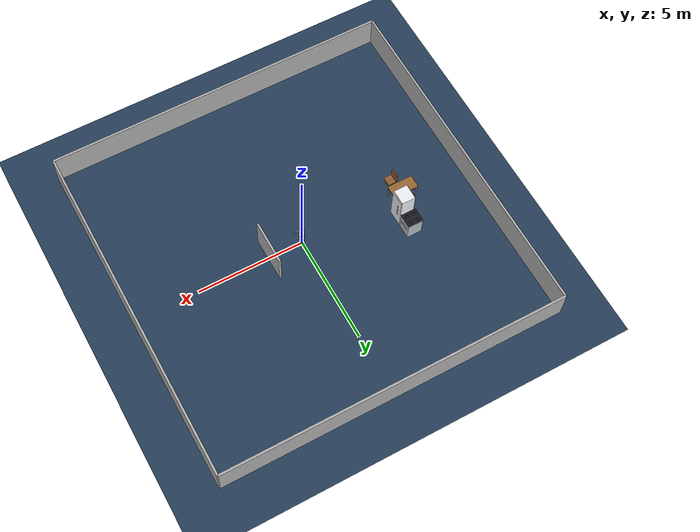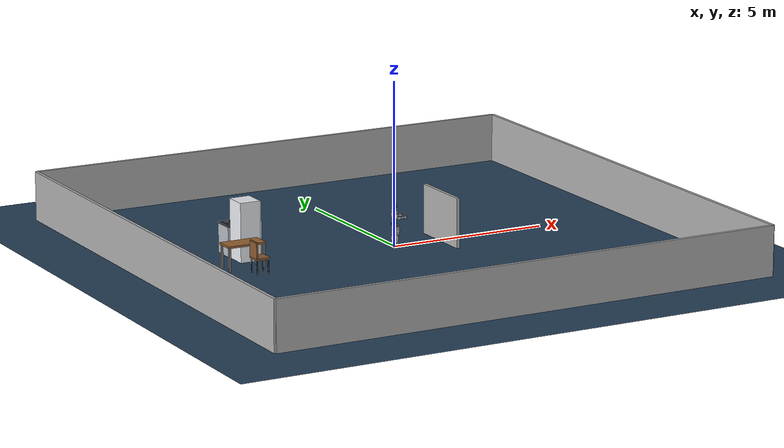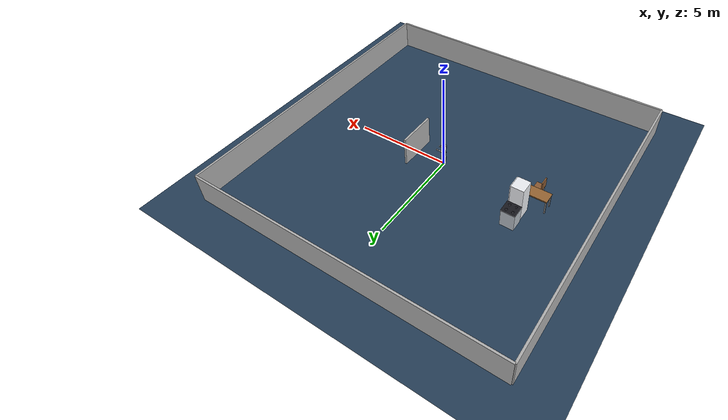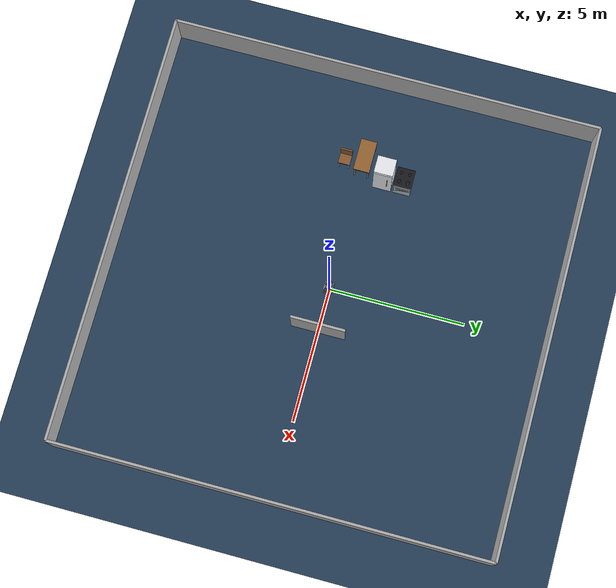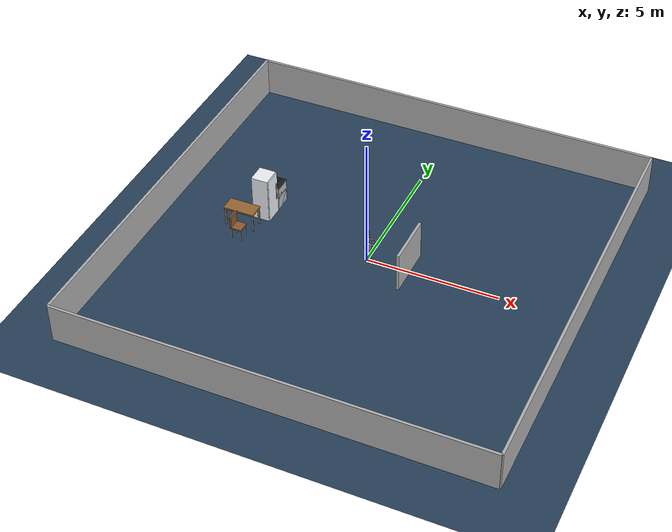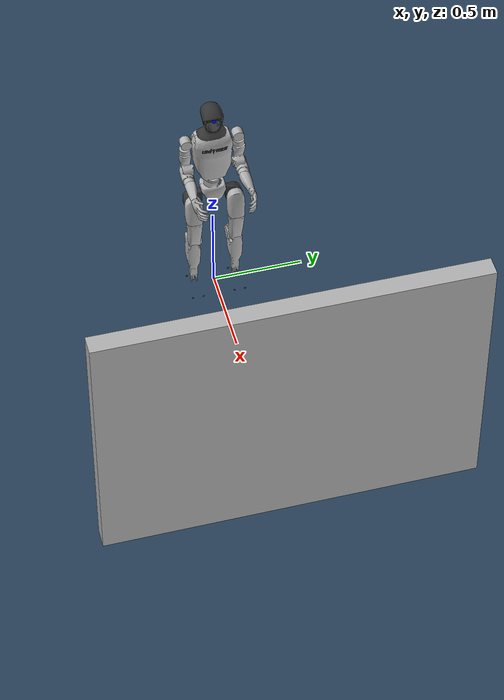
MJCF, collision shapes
<mujoco model="g1 scene">
  <include file="g1_12dof.xml"/>

  <statistic center="1.0 0.7 1.0" extent="0.8"/>

  <visual>
    <headlight diffuse="0.6 0.6 0.6" ambient="0.1 0.1 0.1" specular="0.9 0.9 0.9"/>
    <rgba haze="0.15 0.25 0.35 1"/>
    <global azimuth="-140" elevation="-20"/>
  </visual>

  <asset>
    <texture type="skybox" builtin="flat" rgb1="0 0 0" rgb2="0 0 0" width="512" height="3072"/>
    <texture type="2d" name="groundplane" builtin="checker" mark="edge" rgb1="0.2 0.3 0.4" rgb2="0.1 0.2 0.3" markrgb="0.8 0.8 0.8" width="300" height="300"/>
    <material name="groundplane" texture="groundplane" texuniform="true" texrepeat="5 5" reflectance="0.2"/>
  </asset>

  <asset>
    <!-- Materials -->
    <material name="mat_wood" rgba="0.55 0.36 0.20 1" specular="0.25" shininess="0.25"/>
    <material name="mat_plastic_black" rgba="0.04 0.04 0.05 1" specular="0.25" shininess="0.15"/>
    <material name="mat_rubber" rgba="0.08 0.08 0.08 1" specular="0.05" shininess="0.05"/>
    <material name="mat_stainless" rgba="0.72 0.75 0.78 1" specular="0.9" shininess="0.8"/>
    <material name="mat_enamel_white" rgba="0.94 0.95 0.97 1" specular="0.35" shininess="0.6"/>
    <material name="mat_enamel_black" rgba="0.10 0.10 0.12 1" specular="0.30" shininess="0.35"/>
    <material name="mat_glass" rgba="0.20 0.20 0.22 0.25" specular="0.9" shininess="0.9"/>
  </asset>

  <worldbody>
    <light pos="1 0 3.5" dir="0 0 -1" directional="true"/>
    <geom name="floor" size="0 0 0.05" type="plane" material="groundplane"/>

    <!-- BEGIN OUTSIDE WALL -->
    <body name="wall_out_1" pos="8 0 0.5">
      <geom name="wall_geom_1" type="box" size="0.05 8.0 1.0" rgba="0.7 0.7 0.7 1"
            contype="1" conaffinity="1"/>
    </body>
    <body name="wall_out_2" pos="-8 0 0.5">
      <geom name="wall_geom_2" type="box" size="0.05 8.0 1.0" rgba="0.7 0.7 0.7 1"
            contype="1" conaffinity="1"/>
    </body>
    <body name="wall_out_3" pos="0 8 0.5">
      <geom name="wall_geom_3" type="box" size="8.0 0.05 1.0" rgba="0.7 0.7 0.7 1"
            contype="1" conaffinity="1"/>
    </body>
    <body name="wall_out_4" pos="0 -8 0.5">
      <geom name="wall_geom_4" type="box" size="8.0 0.05 1.0" rgba="0.7 0.7 0.7 1"
            contype="1" conaffinity="1"/>
    </body>

        <!-- Static wall -->
    <body name="wall" pos="1.6 0 0.5">
      <geom name="wall_geom" type="box" size="0.05 1.0 1.0" rgba="0.7 0.7 0.7 1"
            contype="1" conaffinity="1"/>
    </body>

    <body name="desk" pos="-5 0 0">
      <!-- tabletop -->
      <geom type="box" pos="0 0 0.75" size="0.6 0.3 0.03" rgba="0.6 0.4 0.2 1"/>
      <!-- legs -->
      <geom type="box" pos="0.55 0.25 0.375" size="0.03 0.03 0.375"/>
      <geom type="box" pos="-0.55 0.25 0.375" size="0.03 0.03 0.375"/>
      <geom type="box" pos="0.55 -0.25 0.375" size="0.03 0.03 0.375"/>
      <geom type="box" pos="-0.55 -0.25 0.375" size="0.03 0.03 0.375"/>
    </body>

    <body name="chair" pos="-4.8 -0.7 0">
      <!-- Seat -->
      <geom name="chair_seat" type="box" pos="0 0 0.46" size="0.22 0.22 0.03"
            material="mat_wood" contype="1" conaffinity="1" friction="1 0.01 0.001"/>

      <!-- Backrest -->
      <geom name="chair_back" type="box" pos="-0.19 0 0.72" size="0.03 0.22 0.24"
            material="mat_wood" contype="1" conaffinity="1"/>

      <!-- Legs -->
      <geom name="chair_leg_fl" type="cylinder" pos="0.18 0.18 0.23" size="0.02 0.23"
            material="mat_enamel_black" contype="1" conaffinity="1"/>
      <geom name="chair_leg_fr" type="cylinder" pos="0.18 -0.18 0.23" size="0.02 0.23"
            material="mat_enamel_black" contype="1" conaffinity="1"/>
      <geom name="chair_leg_bl" type="cylinder" pos="-0.18 0.18 0.23" size="0.02 0.23"
            material="mat_enamel_black" contype="1" conaffinity="1"/>
      <geom name="chair_leg_br" type="cylinder" pos="-0.18 -0.18 0.23" size="0.02 0.23"
            material="mat_enamel_black" contype="1" conaffinity="1"/>

      <!-- Foot pads -->
      <geom name="chair_foot_fl" type="sphere" pos="0.18 0.18 0.01" size="0.025" material="mat_rubber"/>
      <geom name="chair_foot_fr" type="sphere" pos="0.18 -0.18 0.01" size="0.025" material="mat_rubber"/>
      <geom name="chair_foot_bl" type="sphere" pos="-0.18 0.18 0.01" size="0.025" material="mat_rubber"/>
      <geom name="chair_foot_br" type="sphere" pos="-0.18 -0.18 0.01" size="0.025" material="mat_rubber"/>
    </body>

    <body name="fridge" pos="-4.5 0.85 0">
      <!-- Main carcass -->
      <geom name="fridge_body" type="box" pos="0 0 0.90" size="0.32 0.35 0.90"
            material="mat_enamel_white" contype="1" conaffinity="1" friction="1 0.01 0.001"/>

      <!-- Small feet -->
      <geom type="cylinder" pos="0.25 0.28 0.03" size="0.02 0.03" material="mat_rubber"/>
      <geom type="cylinder" pos="0.25 -0.28 0.03" size="0.02 0.03" material="mat_rubber"/>
      <geom type="cylinder" pos="-0.25 0.28 0.03" size="0.02 0.03" material="mat_rubber"/>
      <geom type="cylinder" pos="-0.25 -0.28 0.03" size="0.02 0.03" material="mat_rubber"/>

      <!-- Door: hinge on the left side (rotate about z) -->
      <body name="fridge_door" pos="0 0 0">
        <joint name="fridge_door_hinge" type="hinge" pos="-0.32 0 0.90" axis="0 0 1"
               limited="true" range="0 1.35" damping="2"/>

        <!-- Door slab -->
        <geom name="fridge_door_geom" type="box" pos="0.33 0 0.90" size="0.03 0.345 0.88"
              material="mat_enamel_white" contype="1" conaffinity="1"/>

        <!-- Door gasket seam (thin darker strip) -->
        <geom name="fridge_door_seam" type="box" pos="0.30 0 0.90" size="0.004 0.345 0.88"
              material="mat_enamel_black" contype="0" conaffinity="0"/>

        <!-- Handle -->
        <geom name="fridge_handle" type="capsule" fromto="0.40 0.18 0.70  0.40 0.18 1.40"
              size="0.015" material="mat_stainless" contype="0" conaffinity="0"/>
      </body>

      <!-- Optional: freezer line (visual divider) -->
      <geom name="fridge_divider" type="box" pos="0.32 0 1.30" size="0.002 0.345 0.002"
            material="mat_enamel_black" contype="0" conaffinity="0"/>
    </body>

    <body name="stove" pos="-4.5 1.6 0">
      <!-- Main body -->
      <geom name="stove_body" type="box" pos="0 0 0.45" size="0.35 0.32 0.45"
            material="mat_stainless" contype="1" conaffinity="1" friction="1 0.01 0.001"/>

      <!-- Cooktop -->
      <geom name="stove_top" type="box" pos="0 0 0.92" size="0.36 0.33 0.02"
            material="mat_enamel_black" contype="1" conaffinity="1"/>

      <!-- Burners (4 discs) -->
      <geom name="burner_fl" type="cylinder" pos="0.16 0.16 0.94" size="0.07 0.01" material="mat_enamel_black"/>
      <geom name="burner_fr" type="cylinder" pos="0.16 -0.16 0.94" size="0.07 0.01" material="mat_enamel_black"/>
      <geom name="burner_bl" type="cylinder" pos="-0.16 0.16 0.94" size="0.06 0.01" material="mat_enamel_black"/>
      <geom name="burner_br" type="cylinder" pos="-0.16 -0.16 0.94" size="0.06 0.01" material="mat_enamel_black"/>

      <!-- Knob panel -->
      <geom name="stove_knob_panel" type="box" pos="0.28 0 0.80" size="0.03 0.30 0.08"
            material="mat_stainless" contype="1" conaffinity="1"/>

      <!-- Knobs -->
      <geom type="cylinder" pos="0.33 0.18 0.82" size="0.02 0.015" material="mat_plastic_black"/>
      <geom type="cylinder" pos="0.33 0.06 0.82" size="0.02 0.015" material="mat_plastic_black"/>
      <geom type="cylinder" pos="0.33 -0.06 0.82" size="0.02 0.015" material="mat_plastic_black"/>
      <geom type="cylinder" pos="0.33 -0.18 0.82" size="0.02 0.015" material="mat_plastic_black"/>

      <!-- Oven door (hinged at bottom) -->
      <body name="oven_door" pos="0 0 0">
        <joint name="oven_door_hinge" type="hinge" pos="0.35 0 0.12" axis="0 1 0"
               limited="true" range="0 1.20" damping="2"/>

        <!-- Door slab -->
        <geom name="oven_door_geom" type="box" pos="0.33 0 0.36" size="0.02 0.30 0.30"
              material="mat_stainless" contype="1" conaffinity="1"/>

        <!-- Glass window -->
        <geom name="oven_glass" type="box" pos="0.31 0 0.36" size="0.003 0.22 0.16"
              material="mat_glass" contype="0" conaffinity="0"/>

        <!-- Handle -->
        <geom name="oven_handle" type="capsule" fromto="0.37 -0.22 0.58  0.37 0.22 0.58"
              size="0.012" material="mat_stainless" contype="0" conaffinity="0"/>
      </body>
    </body>

  </worldbody>
</mujoco>

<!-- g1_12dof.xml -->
<mujoco model="g1_12dof">
  <compiler angle="radian" meshdir="meshes/" discardvisual="false"/>

  <statistic meansize="0.144785" extent="1.23314" center="0.025392 2.0634e-05 -0.245975"/>
  <default>
    <joint damping="0.001" armature="0.01" frictionloss="0.1"/>
  </default>

  <asset>
    <mesh name="pelvis" file="pelvis.STL"/>
    <mesh name="pelvis_contour_link" file="pelvis_contour_link.STL"/>
    <mesh name="left_hip_pitch_link" file="left_hip_pitch_link.STL"/>
    <mesh name="left_hip_roll_link" file="left_hip_roll_link.STL"/>
    <mesh name="left_hip_yaw_link" file="left_hip_yaw_link.STL"/>
    <mesh name="left_knee_link" file="left_knee_link.STL"/>
    <mesh name="left_ankle_pitch_link" file="left_ankle_pitch_link.STL"/>
    <mesh name="left_ankle_roll_link" file="left_ankle_roll_link.STL"/>
    <mesh name="right_hip_pitch_link" file="right_hip_pitch_link.STL"/>
    <mesh name="right_hip_roll_link" file="right_hip_roll_link.STL"/>
    <mesh name="right_hip_yaw_link" file="right_hip_yaw_link.STL"/>
    <mesh name="right_knee_link" file="right_knee_link.STL"/>
    <mesh name="right_ankle_pitch_link" file="right_ankle_pitch_link.STL"/>
    <mesh name="right_ankle_roll_link" file="right_ankle_roll_link.STL"/>
    <mesh name="torso_link_23dof_rev_1_0" file="torso_link_23dof_rev_1_0.STL"/>
    <mesh name="logo_link" file="logo_link.STL"/>
    <mesh name="head_link" file="head_link_no_lidar.STL"/>
    <mesh name="left_shoulder_pitch_link" file="left_shoulder_pitch_link.STL"/>
    <mesh name="left_shoulder_roll_link" file="left_shoulder_roll_link.STL"/>
    <mesh name="left_shoulder_yaw_link" file="left_shoulder_yaw_link.STL"/>
    <mesh name="left_elbow_link" file="left_elbow_link.STL"/>
    <mesh name="left_wrist_roll_rubber_hand" file="left_wrist_roll_rubber_hand.STL"/>
    <mesh name="right_shoulder_pitch_link" file="right_shoulder_pitch_link.STL"/>
    <mesh name="right_shoulder_roll_link" file="right_shoulder_roll_link.STL"/>
    <mesh name="right_shoulder_yaw_link" file="right_shoulder_yaw_link.STL"/>
    <mesh name="right_elbow_link" file="right_elbow_link.STL"/>
    <mesh name="right_wrist_roll_rubber_hand" file="right_wrist_roll_rubber_hand.STL"/>
  </asset>

  <worldbody>
    <body name="pelvis" pos="0 0 0.793">
      <inertial pos="0.0144905 0.000151462 0.144068" quat="0.999881 -0.000505543 -0.0154276 0.000328408" mass="17.7349" diaginertia="0.552723 0.454092 0.211762"/>
      <joint name="floating_base_joint" type="free" limited="false" actuatorfrclimited="false"/>
      <geom type="mesh" contype="0" conaffinity="0" group="1" density="0" rgba="0.2 0.2 0.2 1" mesh="pelvis"/>
      <geom type="mesh" contype="0" conaffinity="0" group="1" density="0" rgba="0.7 0.7 0.7 1" mesh="pelvis_contour_link"/>
      <geom type="mesh" rgba="0.7 0.7 0.7 1" mesh="pelvis_contour_link"/>
      <geom type="mesh" contype="0" conaffinity="0" group="1" density="0" rgba="0.7 0.7 0.7 1" mesh="torso_link_23dof_rev_1_0"/>
      <geom type="mesh" rgba="0.7 0.7 0.7 1" mesh="torso_link_23dof_rev_1_0"/>
      <geom type="mesh" contype="0" conaffinity="0" group="1" density="0" rgba="0.2 0.2 0.2 1" mesh="logo_link"/>
      <geom type="mesh" rgba="0.2 0.2 0.2 1" mesh="logo_link"/>
      <geom type="mesh" contype="0" conaffinity="0" group="1" density="0" rgba="0.2 0.2 0.2 1" mesh="head_link"/>
      <geom type="mesh" rgba="0.2 0.2 0.2 1" mesh="head_link"/>

      <body name="lidar_frame" pos="0 0 0">
        <site name="livox_mid360" pos="-0.004 0 0.45" size="0.01" rgba="1 0 0 1"/>
      </body>

      <body name="depth_camera_frame" pos="0.06 0 0.47">
        <site name="d435i_mount" pos="0 0 0" size="0.01" rgba="0 0 1 1"/>
        <!-- Depth camera (pose is relative to parent body) -->
        <camera name="d435i_depth_cam" pos="0 0 0" quat="0 0.7071 0 -0.7071" fovy="55.2"/>
      </body>

      <geom pos="-7.2e-06 0.10022 0.29178" quat="0.990264 0.139201 1.38722e-05 -9.86868e-05" type="mesh" contype="0" conaffinity="0" group="1" density="0" rgba="0.7 0.7 0.7 1" mesh="left_shoulder_pitch_link"/>
      <geom size="0.03 0.025" pos="7.72569e-07 0.141427 0.293195" quat="0.700213 0.0985001 0.700232 0.0983605" type="cylinder" rgba="0.7 0.7 0.7 1"/>
      <geom pos="3.73942e-07 0.14056 0.288961" quat="1 3.00026e-05 2.74716e-05 -9.57958e-05" type="mesh" contype="0" conaffinity="0" group="1" density="0" rgba="0.7 0.7 0.7 1" mesh="left_shoulder_roll_link"/>
      <geom size="0.03 0.015" pos="-0.00400139 0.146564 0.235962" quat="1 3.00026e-05 2.74716e-05 -9.57958e-05" type="cylinder" rgba="0.7 0.7 0.7 1"/>
      <geom pos="-4.10007e-06 0.146807 0.185762" quat="1 3.00026e-05 2.74716e-05 -9.57958e-05" type="mesh" contype="0" conaffinity="0" group="1" density="0" rgba="0.7 0.7 0.7 1" mesh="left_shoulder_yaw_link"/>
      <geom pos="-4.10007e-06 0.146807 0.185762" quat="1 3.00026e-05 2.74716e-05 -9.57958e-05" type="mesh" rgba="0.7 0.7 0.7 1" mesh="left_shoulder_yaw_link"/>
      <geom pos="0.0157745 0.146808 0.105243" quat="1 3.00026e-05 2.74716e-05 -9.57958e-05" type="mesh" contype="0" conaffinity="0" group="1" density="0" rgba="0.7 0.7 0.7 1" mesh="left_elbow_link"/>
      <geom pos="0.0157745 0.146808 0.105243" quat="1 3.00026e-05 2.74716e-05 -9.57958e-05" type="mesh" rgba="0.7 0.7 0.7 1" mesh="left_elbow_link"/>
      <geom pos="0.115774 0.148678 0.0952374" quat="1 3.00026e-05 2.74716e-05 -9.57958e-05" type="mesh" contype="0" conaffinity="0" group="1" density="0" rgba="0.7 0.7 0.7 1" mesh="left_wrist_roll_rubber_hand"/>
      <geom pos="0.115774 0.148678 0.0952374" quat="1 3.00026e-05 2.74716e-05 -9.57958e-05" type="mesh" rgba="0.7 0.7 0.7 1" mesh="left_wrist_roll_rubber_hand"/>
      <geom pos="-7.2e-06 -0.10021 0.29178" quat="0.990264 -0.139201 1.38722e-05 9.86868e-05" type="mesh" contype="0" conaffinity="0" group="1" density="0" rgba="0.7 0.7 0.7 1" mesh="right_shoulder_pitch_link"/>
      <geom size="0.03 0.025" pos="7.72569e-07 -0.141417 0.293195" quat="0.700213 -0.0985001 0.700232 -0.0983605" type="cylinder" rgba="0.7 0.7 0.7 1"/>
      <geom pos="3.73942e-07 -0.14055 0.288961" quat="1 -3.00026e-05 2.74716e-05 9.57958e-05" type="mesh" contype="0" conaffinity="0" group="1" density="0" rgba="0.7 0.7 0.7 1" mesh="right_shoulder_roll_link"/>
      <geom size="0.03 0.015" pos="-0.00400139 -0.146554 0.235962" quat="1 -3.00026e-05 2.74716e-05 9.57958e-05" type="cylinder" rgba="0.7 0.7 0.7 1"/>
      <geom pos="-4.10007e-06 -0.146797 0.185762" quat="1 -3.00026e-05 2.74716e-05 9.57958e-05" type="mesh" contype="0" conaffinity="0" group="1" density="0" rgba="0.7 0.7 0.7 1" mesh="right_shoulder_yaw_link"/>
      <geom pos="-4.10007e-06 -0.146797 0.185762" quat="1 -3.00026e-05 2.74716e-05 9.57958e-05" type="mesh" rgba="0.7 0.7 0.7 1" mesh="right_shoulder_yaw_link"/>
      <geom pos="0.0157745 -0.146798 0.105243" quat="1 -3.00026e-05 2.74716e-05 9.57958e-05" type="mesh" contype="0" conaffinity="0" group="1" density="0" rgba="0.7 0.7 0.7 1" mesh="right_elbow_link"/>
      <geom pos="0.0157745 -0.146798 0.105243" quat="1 -3.00026e-05 2.74716e-05 9.57958e-05" type="mesh" rgba="0.7 0.7 0.7 1" mesh="right_elbow_link"/>
      <geom pos="0.115774 -0.148668 0.0952374" quat="1 -3.00026e-05 2.74716e-05 9.57958e-05" type="mesh" contype="0" conaffinity="0" group="1" density="0" rgba="0.7 0.7 0.7 1" mesh="right_wrist_roll_rubber_hand"/>
      <geom pos="0.115774 -0.148668 0.0952374" quat="1 -3.00026e-05 2.74716e-05 9.57958e-05" type="mesh" rgba="0.7 0.7 0.7 1" mesh="right_wrist_roll_rubber_hand"/>
      <body name="left_hip_pitch_link" pos="0 0.064452 -0.1027">
        <inertial pos="0.002741 0.047791 -0.02606" quat="0.954862 0.293964 0.0302556 0.030122" mass="1.35" diaginertia="0.00181517 0.00153422 0.00116212"/>
        <joint name="left_hip_pitch_joint" pos="0 0 0" axis="0 1 0" range="-2.5307 2.8798" actuatorfrcrange="-88 88"/>
        <geom type="mesh" contype="0" conaffinity="0" group="1" density="0" rgba="0.2 0.2 0.2 1" mesh="left_hip_pitch_link"/>
        <geom type="mesh" rgba="0.2 0.2 0.2 1" mesh="left_hip_pitch_link"/>
        <body name="left_hip_roll_link" pos="0 0.052 -0.030465" quat="0.996179 0 -0.0873386 0">
          <inertial pos="0.029812 -0.001045 -0.087934" quat="0.977808 -1.97119e-05 0.205576 -0.0403793" mass="1.52" diaginertia="0.00254986 0.00241169 0.00148755"/>
          <joint name="left_hip_roll_joint" pos="0 0 0" axis="1 0 0" range="-0.5236 2.9671" actuatorfrcrange="-139 139"/>
          <geom type="mesh" contype="0" conaffinity="0" group="1" density="0" rgba="0.7 0.7 0.7 1" mesh="left_hip_roll_link"/>
          <geom type="mesh" rgba="0.7 0.7 0.7 1" mesh="left_hip_roll_link"/>
          <body name="left_hip_yaw_link" pos="0.025001 0 -0.12412">
            <inertial pos="-0.057709 -0.010981 -0.15078" quat="0.600598 0.15832 0.223482 0.751181" mass="1.702" diaginertia="0.00776166 0.00717575 0.00160139"/>
            <joint name="left_hip_yaw_joint" pos="0 0 0" axis="0 0 1" range="-2.7576 2.7576" actuatorfrcrange="-88 88"/>
            <geom type="mesh" contype="0" conaffinity="0" group="1" density="0" rgba="0.7 0.7 0.7 1" mesh="left_hip_yaw_link"/>
            <geom type="mesh" rgba="0.7 0.7 0.7 1" mesh="left_hip_yaw_link"/>
            <body name="left_knee_link" pos="-0.078273 0.0021489 -0.17734" quat="0.996179 0 0.0873386 0">
              <inertial pos="0.005457 0.003964 -0.12074" quat="0.923418 -0.0327699 0.0158246 0.382067" mass="1.932" diaginertia="0.0113804 0.0112778 0.00146458"/>
              <joint name="left_knee_joint" pos="0 0 0" axis="0 1 0" range="-0.087267 2.8798" actuatorfrcrange="-139 139"/>
              <geom type="mesh" contype="0" conaffinity="0" group="1" density="0" rgba="0.7 0.7 0.7 1" mesh="left_knee_link"/>
              <geom type="mesh" rgba="0.7 0.7 0.7 1" mesh="left_knee_link"/>
              <body name="left_ankle_pitch_link" pos="0 -9.4445e-05 -0.30001">
                <inertial pos="-0.007269 0 0.011137" quat="0.603053 0.369225 0.369225 0.603053" mass="0.074" diaginertia="1.89e-05 1.40805e-05 6.9195e-06"/>
                <joint name="left_ankle_pitch_joint" pos="0 0 0" axis="0 1 0" range="-0.87267 0.5236" actuatorfrcrange="-50 50"/>
                <geom type="mesh" contype="0" conaffinity="0" group="1" density="0" rgba="0.7 0.7 0.7 1" mesh="left_ankle_pitch_link"/>
                <geom type="mesh" rgba="0.7 0.7 0.7 1" mesh="left_ankle_pitch_link"/>
                <body name="left_ankle_roll_link" pos="0 0 -0.017558">
                  <inertial pos="0.026505 0 -0.016425" quat="-0.000481092 0.728482 -0.000618967 0.685065" mass="0.608" diaginertia="0.00167218 0.0016161 0.000217621"/>
                  <joint name="left_ankle_roll_joint" pos="0 0 0" axis="1 0 0" range="-0.2618 0.2618" actuatorfrcrange="-50 50"/>
                  <geom type="mesh" contype="0" conaffinity="0" group="1" density="0" rgba="0.2 0.2 0.2 1" mesh="left_ankle_roll_link"/>
                  <geom size="0.005" pos="-0.05 0.025 -0.03" rgba="0.2 0.2 0.2 1"/>
                  <geom size="0.005" pos="-0.05 -0.025 -0.03" rgba="0.2 0.2 0.2 1"/>
                  <geom size="0.005" pos="0.12 0.03 -0.03" rgba="0.2 0.2 0.2 1"/>
                  <geom size="0.005" pos="0.12 -0.03 -0.03" rgba="0.2 0.2 0.2 1"/>
                </body>
              </body>
            </body>
          </body>
        </body>
      </body>
      <body name="right_hip_pitch_link" pos="0 -0.064452 -0.1027">
        <inertial pos="0.002741 -0.047791 -0.02606" quat="0.954862 -0.293964 0.0302556 -0.030122" mass="1.35" diaginertia="0.00181517 0.00153422 0.00116212"/>
        <joint name="right_hip_pitch_joint" pos="0 0 0" axis="0 1 0" range="-2.5307 2.8798" actuatorfrcrange="-88 88"/>
        <geom type="mesh" contype="0" conaffinity="0" group="1" density="0" rgba="0.2 0.2 0.2 1" mesh="right_hip_pitch_link"/>
        <geom type="mesh" rgba="0.2 0.2 0.2 1" mesh="right_hip_pitch_link"/>
        <body name="right_hip_roll_link" pos="0 -0.052 -0.030465" quat="0.996179 0 -0.0873386 0">
          <inertial pos="0.029812 0.001045 -0.087934" quat="0.977808 1.97119e-05 0.205576 0.0403793" mass="1.52" diaginertia="0.00254986 0.00241169 0.00148755"/>
          <joint name="right_hip_roll_joint" pos="0 0 0" axis="1 0 0" range="-2.9671 0.5236" actuatorfrcrange="-139 139"/>
          <geom type="mesh" contype="0" conaffinity="0" group="1" density="0" rgba="0.7 0.7 0.7 1" mesh="right_hip_roll_link"/>
          <geom type="mesh" rgba="0.7 0.7 0.7 1" mesh="right_hip_roll_link"/>
          <body name="right_hip_yaw_link" pos="0.025001 0 -0.12412">
            <inertial pos="-0.057709 0.010981 -0.15078" quat="0.751181 0.223482 0.15832 0.600598" mass="1.702" diaginertia="0.00776166 0.00717575 0.00160139"/>
            <joint name="right_hip_yaw_joint" pos="0 0 0" axis="0 0 1" range="-2.7576 2.7576" actuatorfrcrange="-88 88"/>
            <geom type="mesh" contype="0" conaffinity="0" group="1" density="0" rgba="0.7 0.7 0.7 1" mesh="right_hip_yaw_link"/>
            <geom type="mesh" rgba="0.7 0.7 0.7 1" mesh="right_hip_yaw_link"/>
            <body name="right_knee_link" pos="-0.078273 -0.0021489 -0.17734" quat="0.996179 0 0.0873386 0">
              <inertial pos="0.005457 -0.003964 -0.12074" quat="0.923439 0.0345276 0.0116333 -0.382012" mass="1.932" diaginertia="0.011374 0.0112843 0.00146452"/>
              <joint name="right_knee_joint" pos="0 0 0" axis="0 1 0" range="-0.087267 2.8798" actuatorfrcrange="-139 139"/>
              <geom type="mesh" contype="0" conaffinity="0" group="1" density="0" rgba="0.7 0.7 0.7 1" mesh="right_knee_link"/>
              <geom type="mesh" rgba="0.7 0.7 0.7 1" mesh="right_knee_link"/>
              <body name="right_ankle_pitch_link" pos="0 9.4445e-05 -0.30001">
                <inertial pos="-0.007269 0 0.011137" quat="0.603053 0.369225 0.369225 0.603053" mass="0.074" diaginertia="1.89e-05 1.40805e-05 6.9195e-06"/>
                <joint name="right_ankle_pitch_joint" pos="0 0 0" axis="0 1 0" range="-0.87267 0.5236" actuatorfrcrange="-50 50"/>
                <geom type="mesh" contype="0" conaffinity="0" group="1" density="0" rgba="0.7 0.7 0.7 1" mesh="right_ankle_pitch_link"/>
                <geom type="mesh" rgba="0.7 0.7 0.7 1" mesh="right_ankle_pitch_link"/>
                <body name="right_ankle_roll_link" pos="0 0 -0.017558">
                  <inertial pos="0.026505 0 -0.016425" quat="0.000481092 0.728482 0.000618967 0.685065" mass="0.608" diaginertia="0.00167218 0.0016161 0.000217621"/>
                  <joint name="right_ankle_roll_joint" pos="0 0 0" axis="1 0 0" range="-0.2618 0.2618" actuatorfrcrange="-50 50"/>
                  <geom type="mesh" contype="0" conaffinity="0" group="1" density="0" rgba="0.2 0.2 0.2 1" mesh="right_ankle_roll_link"/>
                  <geom size="0.005" pos="-0.05 0.025 -0.03" rgba="0.2 0.2 0.2 1"/>
                  <geom size="0.005" pos="-0.05 -0.025 -0.03" rgba="0.2 0.2 0.2 1"/>
                  <geom size="0.005" pos="0.12 0.03 -0.03" rgba="0.2 0.2 0.2 1"/>
                  <geom size="0.005" pos="0.12 -0.03 -0.03" rgba="0.2 0.2 0.2 1"/>
                </body>
              </body>
            </body>
          </body>
        </body>
      </body>
    </body>
  </worldbody>
  <actuator>
    <motor name="left_hip_pitch_joint" joint="left_hip_pitch_joint"/>
    <motor name="left_hip_roll_joint" joint="left_hip_roll_joint"/>
    <motor name="left_hip_yaw_joint" joint="left_hip_yaw_joint"/>
    <motor name="left_knee_joint" joint="left_knee_joint"/>
    <motor name="left_ankle_pitch_joint" joint="left_ankle_pitch_joint"/>
    <motor name="left_ankle_roll_joint" joint="left_ankle_roll_joint"/>
    <motor name="right_hip_pitch_joint" joint="right_hip_pitch_joint"/>
    <motor name="right_hip_roll_joint" joint="right_hip_roll_joint"/>
    <motor name="right_hip_yaw_joint" joint="right_hip_yaw_joint"/>
    <motor name="right_knee_joint" joint="right_knee_joint"/>
    <motor name="right_ankle_pitch_joint" joint="right_ankle_pitch_joint"/>
    <motor name="right_ankle_roll_joint" joint="right_ankle_roll_joint"/>
  </actuator>

</mujoco>
